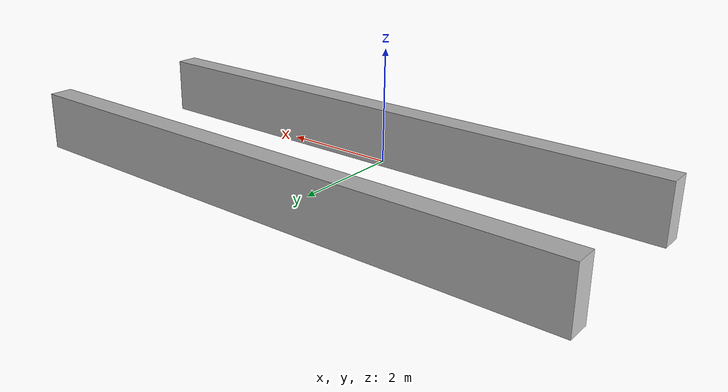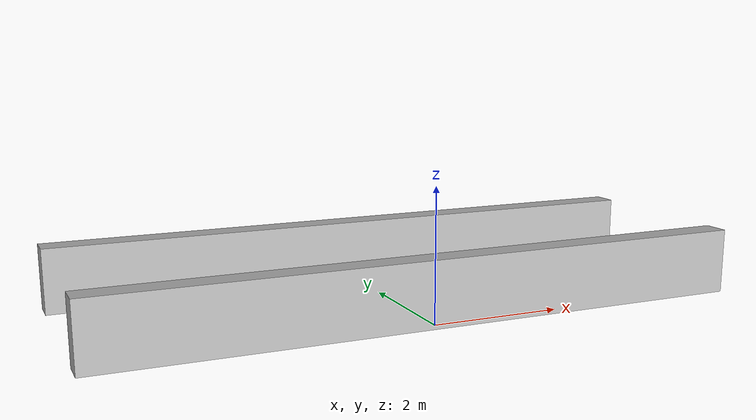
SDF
<?xml version="1.0" ?>

<sdf version="1.5">
	<model name="tracks">
		<static>true</static>		<!-- tracks must be unmovable -->
		<link name='left_track'>
			<!-- Initial box position in its center -->
			<pose>0.0 0.0 0.5 0 0 0</pose>
			<collision name='collision'>
				<geometry>
					<box>
					<!--  length = 5
						width = 0.4
						height = 1.0 -->
						<size>5.0 0.4 1.0</size>
					</box>
				</geometry>
			</collision>
			<visual name='visual'>
				<geometry>
					<box>
					<size>10.0 0.4 1.0</size>
					</box>
				</geometry>
				<material>
          <script>
            <uri>file://media/materials/scripts/gazebo.material</uri>
            <name>Gazebo/Tertiary</name>
          </script>
        </material>
			</visual>
		</link>
			<link name='right_track'>
			<pose>0.0 3.0 0.5 0 0 0</pose>
			<collision name='collision'>
				<geometry>
					<box>
						<size>5.0 0.4 1.0</size>
					</box>
				</geometry>
			</collision>
			<visual name='visual'>
				<geometry>
					<box>
					<size>10.0 0.4 1.0</size>
					</box>
				</geometry>
				<material>
          <script>
            <uri>file://media/materials/scripts/gazebo.material</uri>
            <name>Gazebo/Tertiary</name>
          </script>
        </material>
			</visual>
		</link>
    </model>
</sdf>
